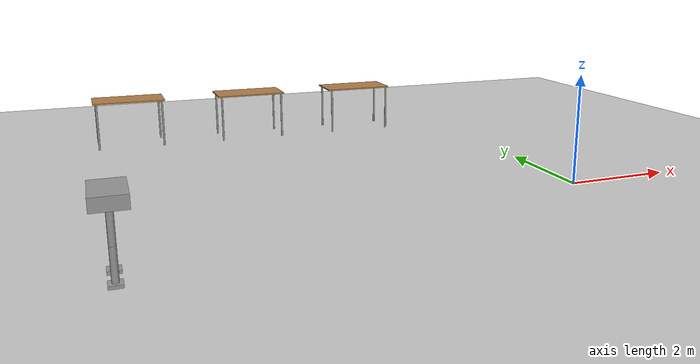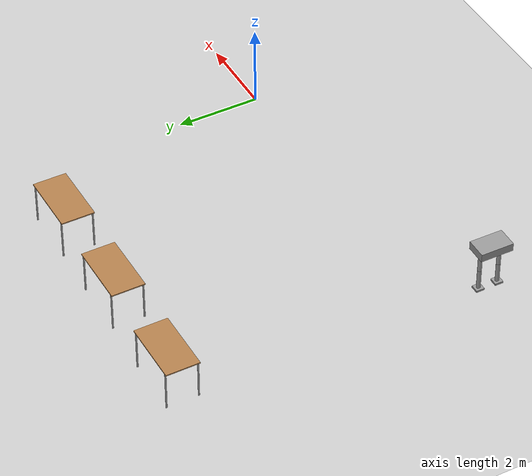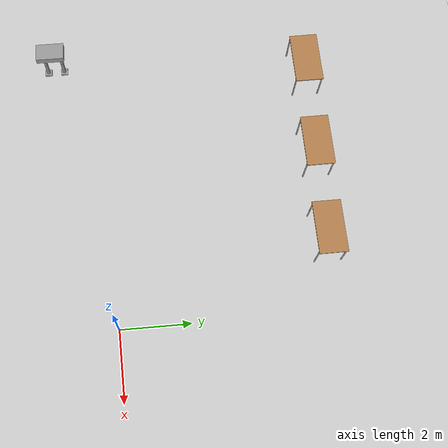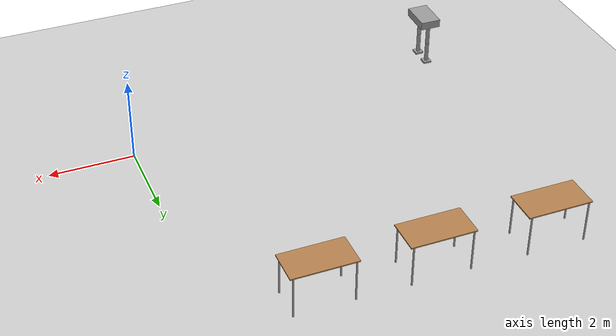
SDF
<sdf version="1.6">
 <world name="default">
  <model name="ground_plane">
   <static>1</static>
   <link name="link">
    <collision name="collision">
     <geometry><plane><normal>0 0 1</normal><size>100 100</size></plane></geometry>
     <surface><friction><ode><mu>100</mu><mu2>50</mu2></ode></friction></surface>
    </collision>
    <visual name="visual">
     <cast_shadows>0</cast_shadows>
     <geometry><plane><normal>0 0 1</normal><size>100 100</size></plane></geometry>
     <material>
      <script><uri>file://media/materials/scripts/gazebo.material</uri><name>Gazebo/Grey</name></script>
     </material>
    </visual>
   </link>
  </model>
  <model name="table">
   <static>1</static>
   <link name="link">
    <collision name="surface">
     <pose>0 0 1 0 -0 0</pose>
     <geometry><box><size>1.5 0.8 0.03</size></box></geometry>
     <surface><friction><ode><mu>0.6</mu><mu2>0.6</mu2></ode></friction></surface>
    </collision>
    <visual name="visual1">
     <pose>0 0 1 0 -0 0</pose>
     <geometry><box><size>1.5 0.8 0.03</size></box></geometry>
     <material>
      <script><uri>file://media/materials/scripts/gazebo.material</uri><name>Gazebo/Wood</name></script>
     </material>
    </visual>
    <collision name="front_left_leg">
     <pose>0.68 0.38 0.5 0 -0 0</pose>
     <geometry><cylinder><radius>0.02</radius><length>1</length></cylinder></geometry>
    </collision>
    <visual name="front_left_leg">
     <pose>0.68 0.38 0.5 0 -0 0</pose>
     <geometry><cylinder><radius>0.02</radius><length>1</length></cylinder></geometry>
     <material>
      <script><uri>file://media/materials/scripts/gazebo.material</uri><name>Gazebo/Grey</name></script>
     </material>
    </visual>
    <collision name="front_right_leg">
     <pose>0.68 -0.38 0.5 0 -0 0</pose>
     <geometry><cylinder><radius>0.02</radius><length>1</length></cylinder></geometry>
    </collision>
    <visual name="front_right_leg">
     <pose>0.68 -0.38 0.5 0 -0 0</pose>
     <geometry><cylinder><radius>0.02</radius><length>1</length></cylinder></geometry>
     <material>
      <script><uri>file://media/materials/scripts/gazebo.material</uri><name>Gazebo/Grey</name></script>
     </material>
    </visual>
    <collision name="back_right_leg">
     <pose>-0.68 -0.38 0.5 0 -0 0</pose>
     <geometry><cylinder><radius>0.02</radius><length>1</length></cylinder></geometry>
    </collision>
    <visual name="back_right_leg">
     <pose>-0.68 -0.38 0.5 0 -0 0</pose>
     <geometry><cylinder><radius>0.02</radius><length>1</length></cylinder></geometry>
     <material>
      <script><uri>file://media/materials/scripts/gazebo.material</uri><name>Gazebo/Grey</name></script>
     </material>
    </visual>
    <collision name="back_left_leg">
     <pose>-0.68 0.38 0.5 0 -0 0</pose>
     <geometry><cylinder><radius>0.02</radius><length>1</length></cylinder></geometry>
    </collision>
    <visual name="back_left_leg">
     <pose>-0.68 0.38 0.5 0 -0 0</pose>
     <geometry><cylinder><radius>0.02</radius><length>1</length></cylinder></geometry>
     <material>
      <script><uri>file://media/materials/scripts/gazebo.material</uri><name>Gazebo/Grey</name></script>
     </material>
    </visual>
   </link>
   <pose>-7.36894 6.05513 0 0 -0 0</pose>
  </model>
  <model name="table_0">
   <static>1</static>
   <link name="link">
    <collision name="surface">
     <pose>0 0 1 0 -0 0</pose>
     <geometry><box><size>1.5 0.8 0.03</size></box></geometry>
     <surface><friction><ode><mu>0.6</mu><mu2>0.6</mu2></ode></friction></surface>
    </collision>
    <visual name="visual1">
     <pose>0 0 1 0 -0 0</pose>
     <geometry><box><size>1.5 0.8 0.03</size></box></geometry>
     <material>
      <script><uri>file://media/materials/scripts/gazebo.material</uri><name>Gazebo/Wood</name></script>
     </material>
    </visual>
    <collision name="front_left_leg">
     <pose>0.68 0.38 0.5 0 -0 0</pose>
     <geometry><cylinder><radius>0.02</radius><length>1</length></cylinder></geometry>
    </collision>
    <visual name="front_left_leg">
     <pose>0.68 0.38 0.5 0 -0 0</pose>
     <geometry><cylinder><radius>0.02</radius><length>1</length></cylinder></geometry>
     <material>
      <script><uri>file://media/materials/scripts/gazebo.material</uri><name>Gazebo/Grey</name></script>
     </material>
    </visual>
    <collision name="front_right_leg">
     <pose>0.68 -0.38 0.5 0 -0 0</pose>
     <geometry><cylinder><radius>0.02</radius><length>1</length></cylinder></geometry>
    </collision>
    <visual name="front_right_leg">
     <pose>0.68 -0.38 0.5 0 -0 0</pose>
     <geometry><cylinder><radius>0.02</radius><length>1</length></cylinder></geometry>
     <material>
      <script><uri>file://media/materials/scripts/gazebo.material</uri><name>Gazebo/Grey</name></script>
     </material>
    </visual>
    <collision name="back_right_leg">
     <pose>-0.68 -0.38 0.5 0 -0 0</pose>
     <geometry><cylinder><radius>0.02</radius><length>1</length></cylinder></geometry>
    </collision>
    <visual name="back_right_leg">
     <pose>-0.68 -0.38 0.5 0 -0 0</pose>
     <geometry><cylinder><radius>0.02</radius><length>1</length></cylinder></geometry>
     <material>
      <script><uri>file://media/materials/scripts/gazebo.material</uri><name>Gazebo/Grey</name></script>
     </material>
    </visual>
    <collision name="back_left_leg">
     <pose>-0.68 0.38 0.5 0 -0 0</pose>
     <geometry><cylinder><radius>0.02</radius><length>1</length></cylinder></geometry>
    </collision>
    <visual name="back_left_leg">
     <pose>-0.68 0.38 0.5 0 -0 0</pose>
     <geometry><cylinder><radius>0.02</radius><length>1</length></cylinder></geometry>
     <material>
      <script><uri>file://media/materials/scripts/gazebo.material</uri><name>Gazebo/Grey</name></script>
     </material>
    </visual>
   </link>
   <pose>-4.70555 5.99963 0 0 -0 0</pose>
  </model>
  <model name="table_0_clone">
   <static>1</static>
   <link name="link">
    <collision name="surface">
     <pose>0 0 1 0 -0 0</pose>
     <geometry><box><size>1.5 0.8 0.03</size></box></geometry>
     <surface><friction><ode><mu>0.6</mu><mu2>0.6</mu2></ode></friction></surface>
    </collision>
    <visual name="visual1">
     <pose>0 0 1 0 -0 0</pose>
     <geometry><box><size>1.5 0.8 0.03</size></box></geometry>
     <material>
      <script><uri>file://media/materials/scripts/gazebo.material</uri><name>Gazebo/Wood</name></script>
     </material>
    </visual>
    <collision name="front_left_leg">
     <pose>0.68 0.38 0.5 0 -0 0</pose>
     <geometry><cylinder><radius>0.02</radius><length>1</length></cylinder></geometry>
    </collision>
    <visual name="front_left_leg">
     <pose>0.68 0.38 0.5 0 -0 0</pose>
     <geometry><cylinder><radius>0.02</radius><length>1</length></cylinder></geometry>
     <material>
      <script><uri>file://media/materials/scripts/gazebo.material</uri><name>Gazebo/Grey</name></script>
     </material>
    </visual>
    <collision name="front_right_leg">
     <pose>0.68 -0.38 0.5 0 -0 0</pose>
     <geometry><cylinder><radius>0.02</radius><length>1</length></cylinder></geometry>
    </collision>
    <visual name="front_right_leg">
     <pose>0.68 -0.38 0.5 0 -0 0</pose>
     <geometry><cylinder><radius>0.02</radius><length>1</length></cylinder></geometry>
     <material>
      <script><uri>file://media/materials/scripts/gazebo.material</uri><name>Gazebo/Grey</name></script>
     </material>
    </visual>
    <collision name="back_right_leg">
     <pose>-0.68 -0.38 0.5 0 -0 0</pose>
     <geometry><cylinder><radius>0.02</radius><length>1</length></cylinder></geometry>
    </collision>
    <visual name="back_right_leg">
     <pose>-0.68 -0.38 0.5 0 -0 0</pose>
     <geometry><cylinder><radius>0.02</radius><length>1</length></cylinder></geometry>
     <material>
      <script><uri>file://media/materials/scripts/gazebo.material</uri><name>Gazebo/Grey</name></script>
     </material>
    </visual>
    <collision name="back_left_leg">
     <pose>-0.68 0.38 0.5 0 -0 0</pose>
     <geometry><cylinder><radius>0.02</radius><length>1</length></cylinder></geometry>
    </collision>
    <visual name="back_left_leg">
     <pose>-0.68 0.38 0.5 0 -0 0</pose>
     <geometry><cylinder><radius>0.02</radius><length>1</length></cylinder></geometry>
     <material>
      <script><uri>file://media/materials/scripts/gazebo.material</uri><name>Gazebo/Grey</name></script>
     </material>
    </visual>
   </link>
   <pose>-2.12132 5.96146 0 0 -0 0</pose>
  </model>
  <model name="HumanoidRobot">
   <link name="link_0_clone">
    <pose>-0.198443 -0.127142 -0.1375 0 -0 0</pose>
    <inertial>
     <mass>1</mass>
     <inertia>
      <ixx>0.166667</ixx>
      <ixy>0</ixy>
      <ixz>0</ixz>
      <iyy>0.166667</iyy>
      <iyz>0</iyz>
      <izz>0.166667</izz>
     </inertia>
    </inertial>
    <visual name="visual">
     <geometry><box><size>0.2 0.2 0.05</size></box></geometry>
     <material>
      <lighting>1</lighting>
      <script><uri>file://media/materials/scripts/gazebo.material</uri><name>Gazebo/Grey</name></script>
      <shader type="pixel"><normal_map>__default__</normal_map></shader>
      <ambient>0.3 0.3 0.3 1</ambient>
      <diffuse>0.7 0.7 0.7 1</diffuse>
      <specular>0.01 0.01 0.01 1</specular>
      <emissive>0 0 0 1</emissive>
     </material>
    </visual>
    <collision name="collision">
     <geometry><box><size>0.2 0.2 0.05</size></box></geometry>
     <surface>
      <friction>
       <ode><mu>1</mu><mu2>1</mu2><fdir1>0 0 0</fdir1><slip1>0</slip1><slip2>0</slip2></ode>
       <torsional>
        <coefficient>1</coefficient>
        <patch_radius>0</patch_radius>
        <surface_radius>0</surface_radius>
        <use_patch_radius>1</use_patch_radius>
        <ode><slip>0</slip></ode>
       </torsional>
      </friction>
      <bounce><restitution_coefficient>0</restitution_coefficient><threshold>1e+06</threshold></bounce>
      <contact>
       <collide_without_contact>0</collide_without_contact>
       <collide_without_contact_bitmask>1</collide_without_contact_bitmask>
       <collide_bitmask>1</collide_bitmask>
       <ode>
        <soft_cfm>0</soft_cfm>
        <soft_erp>0.2</soft_erp>
        <kp>1e+13</kp>
        <kd>1</kd>
        <max_vel>0.01</max_vel>
        <min_depth>0</min_depth>
       </ode>
       <bullet>
        <split_impulse>1</split_impulse>
        <split_impulse_penetration_threshold>-0.01</split_impulse_penetration_threshold>
        <soft_cfm>0</soft_cfm>
        <soft_erp>0.2</soft_erp>
        <kp>1e+13</kp>
        <kd>1</kd>
       </bullet>
      </contact>
     </surface>
    </collision>
   </link>
   <link name="link_0_clone_clone">
    <pose>-0.198527 0.351681 -0.137499 0 -0 0</pose>
    <inertial>
     <mass>1</mass>
     <inertia>
      <ixx>0.166667</ixx>
      <ixy>0</ixy>
      <ixz>0</ixz>
      <iyy>0.166667</iyy>
      <iyz>0</iyz>
      <izz>0.166667</izz>
     </inertia>
    </inertial>
    <visual name="visual">
     <geometry><box><size>0.2 0.2 0.05</size></box></geometry>
     <material>
      <lighting>1</lighting>
      <script><uri>file://media/materials/scripts/gazebo.material</uri><name>Gazebo/Grey</name></script>
      <shader type="pixel"><normal_map>__default__</normal_map></shader>
      <ambient>0.3 0.3 0.3 1</ambient>
      <diffuse>0.7 0.7 0.7 1</diffuse>
      <specular>0.01 0.01 0.01 1</specular>
      <emissive>0 0 0 1</emissive>
     </material>
    </visual>
    <collision name="collision">
     <geometry><box><size>0.2 0.2 0.05</size></box></geometry>
     <surface>
      <friction>
       <ode><mu>1</mu><mu2>1</mu2><fdir1>0 0 0</fdir1><slip1>0</slip1><slip2>0</slip2></ode>
       <torsional>
        <coefficient>1</coefficient>
        <patch_radius>0</patch_radius>
        <surface_radius>0</surface_radius>
        <use_patch_radius>1</use_patch_radius>
        <ode><slip>0</slip></ode>
       </torsional>
      </friction>
      <bounce><restitution_coefficient>0</restitution_coefficient><threshold>1e+06</threshold></bounce>
      <contact>
       <collide_without_contact>0</collide_without_contact>
       <collide_without_contact_bitmask>1</collide_without_contact_bitmask>
       <collide_bitmask>1</collide_bitmask>
       <ode>
        <soft_cfm>0</soft_cfm>
        <soft_erp>0.2</soft_erp>
        <kp>1e+13</kp>
        <kd>1</kd>
        <max_vel>0.01</max_vel>
        <min_depth>0</min_depth>
       </ode>
       <bullet>
        <split_impulse>1</split_impulse>
        <split_impulse_penetration_threshold>-0.01</split_impulse_penetration_threshold>
        <soft_cfm>0</soft_cfm>
        <soft_erp>0.2</soft_erp>
        <kp>1e+13</kp>
        <kd>1</kd>
       </bullet>
      </contact>
     </surface>
    </collision>
   </link>
   <link name="link_1_clone">
    <pose>-0.19848 0.086402 0.987501 0 2e-06 0.000352</pose>
    <inertial>
     <mass>1</mass>
     <inertia>
      <ixx>0.166667</ixx>
      <ixy>0</ixy>
      <ixz>0</ixz>
      <iyy>0.166667</iyy>
      <iyz>0</iyz>
      <izz>0.166667</izz>
     </inertia>
    </inertial>
    <visual name="visual">
     <geometry><box><size>0.5 0.8 0.2</size></box></geometry>
     <material>
      <lighting>1</lighting>
      <script><uri>file://media/materials/scripts/gazebo.material</uri><name>Gazebo/Grey</name></script>
      <shader type="pixel"><normal_map>__default__</normal_map></shader>
      <ambient>0.3 0.3 0.3 1</ambient>
      <diffuse>0.7 0.7 0.7 1</diffuse>
      <specular>0.01 0.01 0.01 1</specular>
      <emissive>0 0 0 1</emissive>
     </material>
    </visual>
    <collision name="collision">
     <geometry><box><size>0.5 0.8 0.2</size></box></geometry>
     <surface>
      <friction>
       <ode><mu>1</mu><mu2>1</mu2><fdir1>0 0 0</fdir1><slip1>0</slip1><slip2>0</slip2></ode>
       <torsional>
        <coefficient>1</coefficient>
        <patch_radius>0</patch_radius>
        <surface_radius>0</surface_radius>
        <use_patch_radius>1</use_patch_radius>
        <ode><slip>0</slip></ode>
       </torsional>
      </friction>
      <bounce><restitution_coefficient>0</restitution_coefficient><threshold>1e+06</threshold></bounce>
      <contact>
       <collide_without_contact>0</collide_without_contact>
       <collide_without_contact_bitmask>1</collide_without_contact_bitmask>
       <collide_bitmask>1</collide_bitmask>
       <ode>
        <soft_cfm>0</soft_cfm>
        <soft_erp>0.2</soft_erp>
        <kp>1e+13</kp>
        <kd>1</kd>
        <max_vel>0.01</max_vel>
        <min_depth>0</min_depth>
       </ode>
       <bullet>
        <split_impulse>1</split_impulse>
        <split_impulse_penetration_threshold>-0.01</split_impulse_penetration_threshold>
        <soft_cfm>0</soft_cfm>
        <soft_erp>0.2</soft_erp>
        <kp>1e+13</kp>
        <kd>1</kd>
       </bullet>
      </contact>
     </surface>
    </collision>
   </link>
   <link name="link_2_clone_clone">
    <pose>-0.198527 0.351681 0.137501 0 -0 0</pose>
    <inertial>
     <mass>1</mass>
     <inertia><ixx>0.145833</ixx><ixy>0</ixy><ixz>0</ixz><iyy>0.145833</iyy><iyz>0</iyz><izz>0.125</izz></inertia>
    </inertial>
    <visual name="visual">
     <geometry><cylinder><radius>0.05</radius><length>0.5</length></cylinder></geometry>
     <material>
      <lighting>1</lighting>
      <script><uri>file://media/materials/scripts/gazebo.material</uri><name>Gazebo/Grey</name></script>
      <shader type="pixel"><normal_map>__default__</normal_map></shader>
      <ambient>0.3 0.3 0.3 1</ambient>
      <diffuse>0.7 0.7 0.7 1</diffuse>
      <specular>0.01 0.01 0.01 1</specular>
      <emissive>0 0 0 1</emissive>
     </material>
    </visual>
    <collision name="collision">
     <geometry><cylinder><radius>0.05</radius><length>0.5</length></cylinder></geometry>
     <surface>
      <friction>
       <ode><mu>1</mu><mu2>1</mu2><fdir1>0 0 0</fdir1><slip1>0</slip1><slip2>0</slip2></ode>
       <torsional>
        <coefficient>1</coefficient>
        <patch_radius>0</patch_radius>
        <surface_radius>0</surface_radius>
        <use_patch_radius>1</use_patch_radius>
        <ode><slip>0</slip></ode>
       </torsional>
      </friction>
      <bounce><restitution_coefficient>0</restitution_coefficient><threshold>1e+06</threshold></bounce>
      <contact>
       <collide_without_contact>0</collide_without_contact>
       <collide_without_contact_bitmask>1</collide_without_contact_bitmask>
       <collide_bitmask>1</collide_bitmask>
       <ode>
        <soft_cfm>0</soft_cfm>
        <soft_erp>0.2</soft_erp>
        <kp>1e+13</kp>
        <kd>1</kd>
        <max_vel>0.01</max_vel>
        <min_depth>0</min_depth>
       </ode>
       <bullet>
        <split_impulse>1</split_impulse>
        <split_impulse_penetration_threshold>-0.01</split_impulse_penetration_threshold>
        <soft_cfm>0</soft_cfm>
        <soft_erp>0.2</soft_erp>
        <kp>1e+13</kp>
        <kd>1</kd>
       </bullet>
      </contact>
     </surface>
    </collision>
   </link>
   <link name="link_2_clone_clone_0">
    <pose>-0.198442 -0.128015 0.637501 -0 1e-06 0.000176</pose>
    <inertial>
     <mass>1</mass>
     <inertia><ixx>0.145833</ixx><ixy>0</ixy><ixz>0</ixz><iyy>0.145833</iyy><iyz>0</iyz><izz>0.125</izz></inertia>
    </inertial>
    <visual name="visual">
     <geometry><cylinder><radius>0.05</radius><length>0.5</length></cylinder></geometry>
     <material>
      <lighting>1</lighting>
      <script><uri>file://media/materials/scripts/gazebo.material</uri><name>Gazebo/Grey</name></script>
      <shader type="pixel"><normal_map>__default__</normal_map></shader>
      <ambient>0.3 0.3 0.3 1</ambient>
      <diffuse>0.7 0.7 0.7 1</diffuse>
      <specular>0.01 0.01 0.01 1</specular>
      <emissive>0 0 0 1</emissive>
     </material>
    </visual>
    <collision name="collision">
     <geometry><cylinder><radius>0.05</radius><length>0.5</length></cylinder></geometry>
     <surface>
      <friction>
       <ode><mu>1</mu><mu2>1</mu2><fdir1>0 0 0</fdir1><slip1>0</slip1><slip2>0</slip2></ode>
       <torsional>
        <coefficient>1</coefficient>
        <patch_radius>0</patch_radius>
        <surface_radius>0</surface_radius>
        <use_patch_radius>1</use_patch_radius>
        <ode><slip>0</slip></ode>
       </torsional>
      </friction>
      <bounce><restitution_coefficient>0</restitution_coefficient><threshold>1e+06</threshold></bounce>
      <contact>
       <collide_without_contact>0</collide_without_contact>
       <collide_without_contact_bitmask>1</collide_without_contact_bitmask>
       <collide_bitmask>1</collide_bitmask>
       <ode>
        <soft_cfm>0</soft_cfm>
        <soft_erp>0.2</soft_erp>
        <kp>1e+13</kp>
        <kd>1</kd>
        <max_vel>0.01</max_vel>
        <min_depth>0</min_depth>
       </ode>
       <bullet>
        <split_impulse>1</split_impulse>
        <split_impulse_penetration_threshold>-0.01</split_impulse_penetration_threshold>
        <soft_cfm>0</soft_cfm>
        <soft_erp>0.2</soft_erp>
        <kp>1e+13</kp>
        <kd>1</kd>
       </bullet>
      </contact>
     </surface>
    </collision>
   </link>
   <link name="link_2_clone_clone_0_clone">
    <pose>-0.198526 0.351681 0.637501 0 2e-06 0.000352</pose>
    <inertial>
     <mass>1</mass>
     <inertia><ixx>0.145833</ixx><ixy>0</ixy><ixz>0</ixz><iyy>0.145833</iyy><iyz>0</iyz><izz>0.125</izz></inertia>
    </inertial>
    <visual name="visual">
     <geometry><cylinder><radius>0.05</radius><length>0.5</length></cylinder></geometry>
     <material>
      <lighting>1</lighting>
      <script><uri>file://media/materials/scripts/gazebo.material</uri><name>Gazebo/Grey</name></script>
      <shader type="pixel"><normal_map>__default__</normal_map></shader>
      <ambient>0.3 0.3 0.3 1</ambient>
      <diffuse>0.7 0.7 0.7 1</diffuse>
      <specular>0.01 0.01 0.01 1</specular>
      <emissive>0 0 0 1</emissive>
     </material>
    </visual>
    <collision name="collision">
     <geometry><cylinder><radius>0.05</radius><length>0.5</length></cylinder></geometry>
     <surface>
      <friction>
       <ode><mu>1</mu><mu2>1</mu2><fdir1>0 0 0</fdir1><slip1>0</slip1><slip2>0</slip2></ode>
       <torsional>
        <coefficient>1</coefficient>
        <patch_radius>0</patch_radius>
        <surface_radius>0</surface_radius>
        <use_patch_radius>1</use_patch_radius>
        <ode><slip>0</slip></ode>
       </torsional>
      </friction>
      <bounce><restitution_coefficient>0</restitution_coefficient><threshold>1e+06</threshold></bounce>
      <contact>
       <collide_without_contact>0</collide_without_contact>
       <collide_without_contact_bitmask>1</collide_without_contact_bitmask>
       <collide_bitmask>1</collide_bitmask>
       <ode>
        <soft_cfm>0</soft_cfm>
        <soft_erp>0.2</soft_erp>
        <kp>1e+13</kp>
        <kd>1</kd>
        <max_vel>0.01</max_vel>
        <min_depth>0</min_depth>
       </ode>
       <bullet>
        <split_impulse>1</split_impulse>
        <split_impulse_penetration_threshold>-0.01</split_impulse_penetration_threshold>
        <soft_cfm>0</soft_cfm>
        <soft_erp>0.2</soft_erp>
        <kp>1e+13</kp>
        <kd>1</kd>
       </bullet>
      </contact>
     </surface>
    </collision>
   </link>
   <link name="link_2_clone_clone_clone">
    <pose>-0.198443 -0.128015 0.137501 -0 1e-06 0.000176</pose>
    <inertial>
     <mass>1</mass>
     <inertia><ixx>0.145833</ixx><ixy>0</ixy><ixz>0</ixz><iyy>0.145833</iyy><iyz>0</iyz><izz>0.125</izz></inertia>
    </inertial>
    <visual name="visual">
     <geometry><cylinder><radius>0.05</radius><length>0.5</length></cylinder></geometry>
     <material>
      <lighting>1</lighting>
      <script><uri>file://media/materials/scripts/gazebo.material</uri><name>Gazebo/Grey</name></script>
      <shader type="pixel"><normal_map>__default__</normal_map></shader>
      <ambient>0.3 0.3 0.3 1</ambient>
      <diffuse>0.7 0.7 0.7 1</diffuse>
      <specular>0.01 0.01 0.01 1</specular>
      <emissive>0 0 0 1</emissive>
     </material>
    </visual>
    <collision name="collision">
     <geometry><cylinder><radius>0.05</radius><length>0.5</length></cylinder></geometry>
     <surface>
      <friction>
       <ode><mu>1</mu><mu2>1</mu2><fdir1>0 0 0</fdir1><slip1>0</slip1><slip2>0</slip2></ode>
       <torsional>
        <coefficient>1</coefficient>
        <patch_radius>0</patch_radius>
        <surface_radius>0</surface_radius>
        <use_patch_radius>1</use_patch_radius>
        <ode><slip>0</slip></ode>
       </torsional>
      </friction>
      <bounce><restitution_coefficient>0</restitution_coefficient><threshold>1e+06</threshold></bounce>
      <contact>
       <collide_without_contact>0</collide_without_contact>
       <collide_without_contact_bitmask>1</collide_without_contact_bitmask>
       <collide_bitmask>1</collide_bitmask>
       <ode>
        <soft_cfm>0</soft_cfm>
        <soft_erp>0.2</soft_erp>
        <kp>1e+13</kp>
        <kd>1</kd>
        <max_vel>0.01</max_vel>
        <min_depth>0</min_depth>
       </ode>
       <bullet>
        <split_impulse>1</split_impulse>
        <split_impulse_penetration_threshold>-0.01</split_impulse_penetration_threshold>
        <soft_cfm>0</soft_cfm>
        <soft_erp>0.2</soft_erp>
        <kp>1e+13</kp>
        <kd>1</kd>
       </bullet>
      </contact>
     </surface>
    </collision>
   </link>
   <joint name="link_0_clone_JOINT_3" type="fixed">
    <parent>link_0_clone</parent>
    <child>link_2_clone_clone_clone</child>
    <physics>
     <ode><limit><cfm>0</cfm><erp>0.2</erp></limit><suspension><cfm>0</cfm><erp>0.2</erp></suspension></ode>
    </physics>
   </joint>
   <joint name="link_0_clone_clone_JOINT_2" type="fixed">
    <parent>link_0_clone_clone</parent>
    <child>link_2_clone_clone</child>
    <physics>
     <ode><limit><cfm>0</cfm><erp>0.2</erp></limit><suspension><cfm>0</cfm><erp>0.2</erp></suspension></ode>
    </physics>
   </joint>
   <joint name="link_0_clone_clone_JOINT_3" type="fixed">
    <parent>link_0_clone_clone</parent>
    <child>link_2_clone_clone</child>
    <physics>
     <ode><limit><cfm>0</cfm><erp>0.2</erp></limit><suspension><cfm>0</cfm><erp>0.2</erp></suspension></ode>
    </physics>
   </joint>
   <joint name="link_2_clone_clone_0_JOINT_10" type="fixed">
    <parent>link_2_clone_clone_0</parent>
    <child>link_1_clone</child>
    <physics>
     <ode><limit><cfm>0</cfm><erp>0.2</erp></limit><suspension><cfm>0</cfm><erp>0.2</erp></suspension></ode>
    </physics>
   </joint>
   <joint name="link_2_clone_clone_0_clone_JOINT_8" type="fixed">
    <parent>link_2_clone_clone_0_clone</parent>
    <child>link_1_clone</child>
    <physics>
     <ode><limit><cfm>0</cfm><erp>0.2</erp></limit><suspension><cfm>0</cfm><erp>0.2</erp></suspension></ode>
    </physics>
   </joint>
   <joint name="link_2_clone_clone_JOINT_6" type="fixed">
    <parent>link_2_clone_clone</parent>
    <child>link_2_clone_clone_0_clone</child>
    <physics>
     <ode><limit><cfm>0</cfm><erp>0.2</erp></limit><suspension><cfm>0</cfm><erp>0.2</erp></suspension></ode>
    </physics>
   </joint>
   <joint name="link_2_clone_clone_clone_JOINT_5" type="fixed">
    <parent>link_2_clone_clone_clone</parent>
    <child>link_2_clone_clone_0</child>
    <physics>
     <ode><limit><cfm>0</cfm><erp>0.2</erp></limit><suspension><cfm>0</cfm><erp>0.2</erp></suspension></ode>
    </physics>
   </joint>
   <static>0</static>
   <pose>-7.90368 -1.52835 0.1625 0 0 -0.012012</pose>
  </model>
 </world>
</sdf>
